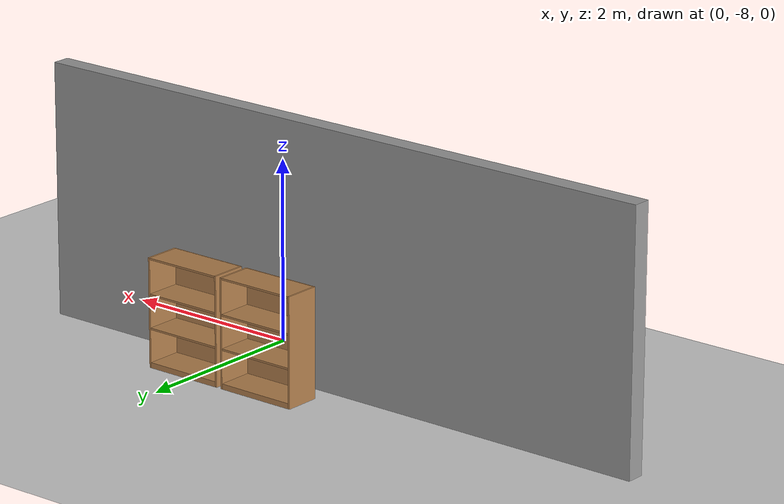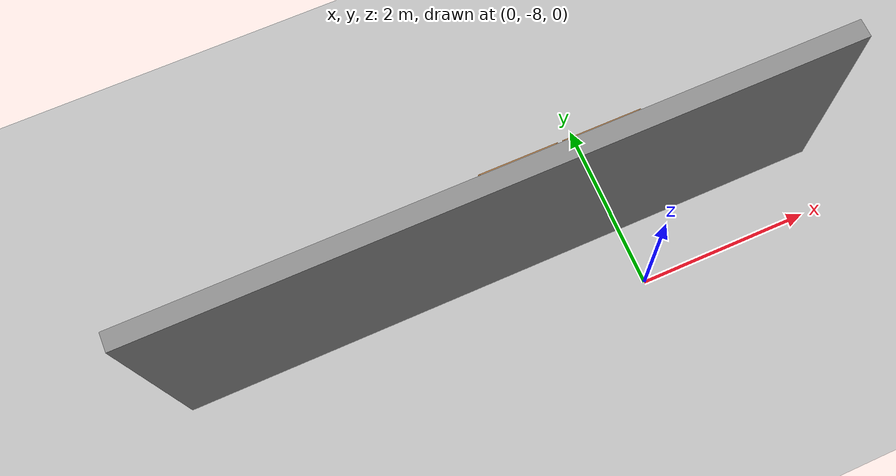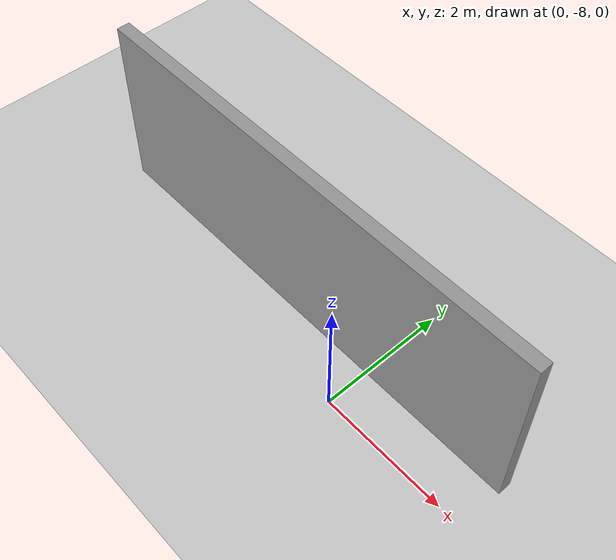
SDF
<sdf version="1.6">
 <world name="default">
  <model name="grey_wall_g">
   <link name="link">
    <pose>0 0 1.4 0 -0 0</pose>
    <inertial>
     <mass>1</mass>
     <inertia><ixx>1</ixx><ixy>0</ixy><ixz>0</ixz><iyy>1</iyy><iyz>0</iyz><izz>1</izz></inertia>
    </inertial>
    <visual name="visual">
     <cast_shadows>0</cast_shadows>
     <geometry><box><size>7.5 0.2 2.8</size></box></geometry>
     <material>
      <script>
       <uri>model://grey_wall/materials/scripts</uri>
       <uri>model://grey_wall/materials/textures</uri>
       <name>Gazebo/Grey</name>
      </script>
      <ambient>1 1 1 1</ambient>
      <diffuse>1 1 1 1</diffuse>
      <specular>0 0 0 1</specular>
      <emissive>0 0 0 1</emissive>
      <shader type="vertex"><normal_map>__default__</normal_map></shader>
     </material>
    </visual>
    <collision name="collision">
     <geometry><box><size>7.5 0.2 2.8</size></box></geometry>
     <surface>
      <friction>
       <ode><mu>1</mu><mu2>1</mu2><fdir1>0 0 0</fdir1><slip1>0</slip1><slip2>0</slip2></ode>
       <torsional>
        <coefficient>1</coefficient>
        <patch_radius>0</patch_radius>
        <surface_radius>0</surface_radius>
        <use_patch_radius>1</use_patch_radius>
        <ode><slip>0</slip></ode>
       </torsional>
      </friction>
      <bounce><restitution_coefficient>0</restitution_coefficient><threshold>1e+06</threshold></bounce>
      <contact>
       <collide_without_contact>0</collide_without_contact>
       <collide_without_contact_bitmask>1</collide_without_contact_bitmask>
       <collide_bitmask>1</collide_bitmask>
       <ode>
        <soft_cfm>0</soft_cfm>
        <soft_erp>0.2</soft_erp>
        <kp>1e+13</kp>
        <kd>1</kd>
        <max_vel>0.01</max_vel>
        <min_depth>0</min_depth>
       </ode>
       <bullet>
        <split_impulse>1</split_impulse>
        <split_impulse_penetration_threshold>-0.01</split_impulse_penetration_threshold>
        <soft_cfm>0</soft_cfm>
        <soft_erp>0.2</soft_erp>
        <kp>1e+13</kp>
        <kd>1</kd>
       </bullet>
      </contact>
     </surface>
    </collision>
   </link>
   <static>1</static>
   <pose>-1.36625 -7.21463 0 0 -0 0</pose>
  </model>
  <model name="ground_plane">
   <static>1</static>
   <link name="link">
    <collision name="collision">
     <geometry><plane><normal>0 0 1</normal><size>100 100</size></plane></geometry>
     <surface><friction><ode><mu>100</mu><mu2>50</mu2></ode></friction></surface>
    </collision>
    <visual name="visual">
     <cast_shadows>0</cast_shadows>
     <geometry><plane><normal>0 0 1</normal><size>100 100</size></plane></geometry>
     <material>
      <script><uri>file://media/materials/scripts/gazebo.material</uri><name>Gazebo/Grey</name></script>
     </material>
    </visual>
   </link>
   <pose>-3.46411 -11.1785 0 0 -0 0</pose>
  </model>
  <model name="bookshelf_0_clone">
   <link name="link">
    <pose>0 0 0 0 -0 3.14</pose>
    <inertial>
     <mass>1</mass>
     <inertia><ixx>1</ixx><ixy>0</ixy><ixz>0</ixz><iyy>1</iyy><iyz>0</iyz><izz>1</izz></inertia>
    </inertial>
    <visual name="visual1">
     <pose>0 0.005 0.6 0 -0 0</pose>
     <geometry><box><size>0.9 0.01 1.2</size></box></geometry>
     <material>
      <script><uri>file://media/materials/scripts/gazebo.material</uri><name>Gazebo/Wood</name></script>
      <ambient>1 1 1 1</ambient>
      <diffuse>1 1 1 1</diffuse>
      <specular>0.2 0.2 0.2 1</specular>
      <emissive>0 0 0 1</emissive>
      <shader type="vertex"><normal_map>__default__</normal_map></shader>
     </material>
    </visual>
    <visual name="visual2">
     <pose>0.45 -0.195 0.6 0 -0 0</pose>
     <geometry><box><size>0.02 0.4 1.2</size></box></geometry>
     <material>
      <script><uri>file://media/materials/scripts/gazebo.material</uri><name>Gazebo/Wood</name></script>
      <ambient>1 1 1 1</ambient>
      <diffuse>1 1 1 1</diffuse>
      <specular>0.2 0.2 0.2 1</specular>
      <emissive>0 0 0 1</emissive>
      <shader type="vertex"><normal_map>__default__</normal_map></shader>
     </material>
    </visual>
    <visual name="visual3">
     <pose>-0.45 -0.195 0.6 0 -0 0</pose>
     <geometry><box><size>0.02 0.4 1.2</size></box></geometry>
     <material>
      <script><uri>file://media/materials/scripts/gazebo.material</uri><name>Gazebo/Wood</name></script>
      <ambient>1 1 1 1</ambient>
      <diffuse>1 1 1 1</diffuse>
      <specular>0.2 0.2 0.2 1</specular>
      <emissive>0 0 0 1</emissive>
      <shader type="vertex"><normal_map>__default__</normal_map></shader>
     </material>
    </visual>
    <visual name="visual4">
     <pose>0 -0.195 0.03 0 -0 0</pose>
     <geometry><box><size>0.88 0.4 0.06</size></box></geometry>
     <material>
      <script><uri>file://media/materials/scripts/gazebo.material</uri><name>Gazebo/Wood</name></script>
      <ambient>1 1 1 1</ambient>
      <diffuse>1 1 1 1</diffuse>
      <specular>0.2 0.2 0.2 1</specular>
      <emissive>0 0 0 1</emissive>
      <shader type="vertex"><normal_map>__default__</normal_map></shader>
     </material>
    </visual>
    <visual name="visual5">
     <pose>0 -0.195 1.19 0 -0 0</pose>
     <geometry><box><size>0.88 0.4 0.02</size></box></geometry>
     <material>
      <script><uri>file://media/materials/scripts/gazebo.material</uri><name>Gazebo/Wood</name></script>
      <ambient>1 1 1 1</ambient>
      <diffuse>1 1 1 1</diffuse>
      <specular>0.2 0.2 0.2 1</specular>
      <emissive>0 0 0 1</emissive>
      <shader type="vertex"><normal_map>__default__</normal_map></shader>
     </material>
    </visual>
    <visual name="visual6">
     <pose>0 -0.195 0.43 0 -0 0</pose>
     <geometry><box><size>0.88 0.4 0.02</size></box></geometry>
     <material>
      <script><uri>file://media/materials/scripts/gazebo.material</uri><name>Gazebo/Wood</name></script>
      <ambient>1 1 1 1</ambient>
      <diffuse>1 1 1 1</diffuse>
      <specular>0.2 0.2 0.2 1</specular>
      <emissive>0 0 0 1</emissive>
      <shader type="vertex"><normal_map>__default__</normal_map></shader>
     </material>
    </visual>
    <visual name="visual7">
     <pose>0 -0.195 0.8 0 -0 0</pose>
     <geometry><box><size>0.88 0.4 0.02</size></box></geometry>
     <material>
      <script><uri>file://media/materials/scripts/gazebo.material</uri><name>Gazebo/Wood</name></script>
      <ambient>1 1 1 1</ambient>
      <diffuse>1 1 1 1</diffuse>
      <specular>0.2 0.2 0.2 1</specular>
      <emissive>0 0 0 1</emissive>
      <shader type="vertex"><normal_map>__default__</normal_map></shader>
     </material>
    </visual>
    <collision name="left_side">
     <pose>0.45 -0.195 0.6 0 -0 0</pose>
     <geometry><box><size>0.02 0.4 1.2</size></box></geometry>
     <surface>
      <friction>
       <ode><mu>1</mu><mu2>1</mu2><fdir1>0 0 0</fdir1><slip1>0</slip1><slip2>0</slip2></ode>
       <torsional>
        <coefficient>1</coefficient>
        <patch_radius>0</patch_radius>
        <surface_radius>0</surface_radius>
        <use_patch_radius>1</use_patch_radius>
        <ode><slip>0</slip></ode>
       </torsional>
      </friction>
      <bounce><restitution_coefficient>0</restitution_coefficient><threshold>1e+06</threshold></bounce>
      <contact>
       <collide_without_contact>0</collide_without_contact>
       <collide_without_contact_bitmask>1</collide_without_contact_bitmask>
       <collide_bitmask>1</collide_bitmask>
       <ode>
        <soft_cfm>0</soft_cfm>
        <soft_erp>0.2</soft_erp>
        <kp>1e+13</kp>
        <kd>1</kd>
        <max_vel>0.01</max_vel>
        <min_depth>0</min_depth>
       </ode>
       <bullet>
        <split_impulse>1</split_impulse>
        <split_impulse_penetration_threshold>-0.01</split_impulse_penetration_threshold>
        <soft_cfm>0</soft_cfm>
        <soft_erp>0.2</soft_erp>
        <kp>1e+13</kp>
        <kd>1</kd>
       </bullet>
      </contact>
     </surface>
    </collision>
    <collision name="back">
     <pose>0 0.005 0.6 0 -0 0</pose>
     <geometry><box><size>0.9 0.01 1.2</size></box></geometry>
     <surface>
      <friction>
       <ode><mu>1</mu><mu2>1</mu2><fdir1>0 0 0</fdir1><slip1>0</slip1><slip2>0</slip2></ode>
       <torsional>
        <coefficient>1</coefficient>
        <patch_radius>0</patch_radius>
        <surface_radius>0</surface_radius>
        <use_patch_radius>1</use_patch_radius>
        <ode><slip>0</slip></ode>
       </torsional>
      </friction>
      <bounce><restitution_coefficient>0</restitution_coefficient><threshold>1e+06</threshold></bounce>
      <contact>
       <collide_without_contact>0</collide_without_contact>
       <collide_without_contact_bitmask>1</collide_without_contact_bitmask>
       <collide_bitmask>1</collide_bitmask>
       <ode>
        <soft_cfm>0</soft_cfm>
        <soft_erp>0.2</soft_erp>
        <kp>1e+13</kp>
        <kd>1</kd>
        <max_vel>0.01</max_vel>
        <min_depth>0</min_depth>
       </ode>
       <bullet>
        <split_impulse>1</split_impulse>
        <split_impulse_penetration_threshold>-0.01</split_impulse_penetration_threshold>
        <soft_cfm>0</soft_cfm>
        <soft_erp>0.2</soft_erp>
        <kp>1e+13</kp>
        <kd>1</kd>
       </bullet>
      </contact>
     </surface>
    </collision>
    <collision name="low_shelf">
     <pose>0 -0.195 0.43 0 -0 0</pose>
     <geometry><box><size>0.88 0.4 0.02</size></box></geometry>
     <surface>
      <friction>
       <ode><mu>1</mu><mu2>1</mu2><fdir1>0 0 0</fdir1><slip1>0</slip1><slip2>0</slip2></ode>
       <torsional>
        <coefficient>1</coefficient>
        <patch_radius>0</patch_radius>
        <surface_radius>0</surface_radius>
        <use_patch_radius>1</use_patch_radius>
        <ode><slip>0</slip></ode>
       </torsional>
      </friction>
      <bounce><restitution_coefficient>0</restitution_coefficient><threshold>1e+06</threshold></bounce>
      <contact>
       <collide_without_contact>0</collide_without_contact>
       <collide_without_contact_bitmask>1</collide_without_contact_bitmask>
       <collide_bitmask>1</collide_bitmask>
       <ode>
        <soft_cfm>0</soft_cfm>
        <soft_erp>0.2</soft_erp>
        <kp>1e+13</kp>
        <kd>1</kd>
        <max_vel>0.01</max_vel>
        <min_depth>0</min_depth>
       </ode>
       <bullet>
        <split_impulse>1</split_impulse>
        <split_impulse_penetration_threshold>-0.01</split_impulse_penetration_threshold>
        <soft_cfm>0</soft_cfm>
        <soft_erp>0.2</soft_erp>
        <kp>1e+13</kp>
        <kd>1</kd>
       </bullet>
      </contact>
     </surface>
    </collision>
    <collision name="right_side">
     <pose>-0.45 -0.195 0.6 0 -0 0</pose>
     <geometry><box><size>0.02 0.4 1.2</size></box></geometry>
     <surface>
      <friction>
       <ode><mu>1</mu><mu2>1</mu2><fdir1>0 0 0</fdir1><slip1>0</slip1><slip2>0</slip2></ode>
       <torsional>
        <coefficient>1</coefficient>
        <patch_radius>0</patch_radius>
        <surface_radius>0</surface_radius>
        <use_patch_radius>1</use_patch_radius>
        <ode><slip>0</slip></ode>
       </torsional>
      </friction>
      <bounce><restitution_coefficient>0</restitution_coefficient><threshold>1e+06</threshold></bounce>
      <contact>
       <collide_without_contact>0</collide_without_contact>
       <collide_without_contact_bitmask>1</collide_without_contact_bitmask>
       <collide_bitmask>1</collide_bitmask>
       <ode>
        <soft_cfm>0</soft_cfm>
        <soft_erp>0.2</soft_erp>
        <kp>1e+13</kp>
        <kd>1</kd>
        <max_vel>0.01</max_vel>
        <min_depth>0</min_depth>
       </ode>
       <bullet>
        <split_impulse>1</split_impulse>
        <split_impulse_penetration_threshold>-0.01</split_impulse_penetration_threshold>
        <soft_cfm>0</soft_cfm>
        <soft_erp>0.2</soft_erp>
        <kp>1e+13</kp>
        <kd>1</kd>
       </bullet>
      </contact>
     </surface>
    </collision>
    <collision name="bottom">
     <pose>0 -0.195 0.03 0 -0 0</pose>
     <geometry><box><size>0.88 0.4 0.06</size></box></geometry>
     <surface>
      <friction>
       <ode><mu>1</mu><mu2>1</mu2><fdir1>0 0 0</fdir1><slip1>0</slip1><slip2>0</slip2></ode>
       <torsional>
        <coefficient>1</coefficient>
        <patch_radius>0</patch_radius>
        <surface_radius>0</surface_radius>
        <use_patch_radius>1</use_patch_radius>
        <ode><slip>0</slip></ode>
       </torsional>
      </friction>
      <bounce><restitution_coefficient>0</restitution_coefficient><threshold>1e+06</threshold></bounce>
      <contact>
       <collide_without_contact>0</collide_without_contact>
       <collide_without_contact_bitmask>1</collide_without_contact_bitmask>
       <collide_bitmask>1</collide_bitmask>
       <ode>
        <soft_cfm>0</soft_cfm>
        <soft_erp>0.2</soft_erp>
        <kp>1e+13</kp>
        <kd>1</kd>
        <max_vel>0.01</max_vel>
        <min_depth>0</min_depth>
       </ode>
       <bullet>
        <split_impulse>1</split_impulse>
        <split_impulse_penetration_threshold>-0.01</split_impulse_penetration_threshold>
        <soft_cfm>0</soft_cfm>
        <soft_erp>0.2</soft_erp>
        <kp>1e+13</kp>
        <kd>1</kd>
       </bullet>
      </contact>
     </surface>
    </collision>
    <collision name="top">
     <pose>0 -0.195 1.19 0 -0 0</pose>
     <geometry><box><size>0.88 0.4 0.02</size></box></geometry>
     <surface>
      <friction>
       <ode><mu>1</mu><mu2>1</mu2><fdir1>0 0 0</fdir1><slip1>0</slip1><slip2>0</slip2></ode>
       <torsional>
        <coefficient>1</coefficient>
        <patch_radius>0</patch_radius>
        <surface_radius>0</surface_radius>
        <use_patch_radius>1</use_patch_radius>
        <ode><slip>0</slip></ode>
       </torsional>
      </friction>
      <bounce><restitution_coefficient>0</restitution_coefficient><threshold>1e+06</threshold></bounce>
      <contact>
       <collide_without_contact>0</collide_without_contact>
       <collide_without_contact_bitmask>1</collide_without_contact_bitmask>
       <collide_bitmask>1</collide_bitmask>
       <ode>
        <soft_cfm>0</soft_cfm>
        <soft_erp>0.2</soft_erp>
        <kp>1e+13</kp>
        <kd>1</kd>
        <max_vel>0.01</max_vel>
        <min_depth>0</min_depth>
       </ode>
       <bullet>
        <split_impulse>1</split_impulse>
        <split_impulse_penetration_threshold>-0.01</split_impulse_penetration_threshold>
        <soft_cfm>0</soft_cfm>
        <soft_erp>0.2</soft_erp>
        <kp>1e+13</kp>
        <kd>1</kd>
       </bullet>
      </contact>
     </surface>
    </collision>
    <collision name="high_shelf">
     <pose>0 -0.195 0.8 0 -0 0</pose>
     <geometry><box><size>0.88 0.4 0.02</size></box></geometry>
     <surface>
      <friction>
       <ode><mu>1</mu><mu2>1</mu2><fdir1>0 0 0</fdir1><slip1>0</slip1><slip2>0</slip2></ode>
       <torsional>
        <coefficient>1</coefficient>
        <patch_radius>0</patch_radius>
        <surface_radius>0</surface_radius>
        <use_patch_radius>1</use_patch_radius>
        <ode><slip>0</slip></ode>
       </torsional>
      </friction>
      <bounce><restitution_coefficient>0</restitution_coefficient><threshold>1e+06</threshold></bounce>
      <contact>
       <collide_without_contact>0</collide_without_contact>
       <collide_without_contact_bitmask>1</collide_without_contact_bitmask>
       <collide_bitmask>1</collide_bitmask>
       <ode>
        <soft_cfm>0</soft_cfm>
        <soft_erp>0.2</soft_erp>
        <kp>1e+13</kp>
        <kd>1</kd>
        <max_vel>0.01</max_vel>
        <min_depth>0</min_depth>
       </ode>
       <bullet>
        <split_impulse>1</split_impulse>
        <split_impulse_penetration_threshold>-0.01</split_impulse_penetration_threshold>
        <soft_cfm>0</soft_cfm>
        <soft_erp>0.2</soft_erp>
        <kp>1e+13</kp>
        <kd>1</kd>
       </bullet>
      </contact>
     </surface>
    </collision>
   </link>
   <static>1</static>
   <pose>0.078978 -6.8979 0 0 -0 0</pose>
  </model>
  <model name="bookshelf_0_clone_0">
   <link name="link">
    <pose>0 0 0 0 -0 3.14</pose>
    <inertial>
     <mass>1</mass>
     <inertia><ixx>1</ixx><ixy>0</ixy><ixz>0</ixz><iyy>1</iyy><iyz>0</iyz><izz>1</izz></inertia>
    </inertial>
    <visual name="visual1">
     <pose>0 0.005 0.6 0 -0 0</pose>
     <geometry><box><size>0.9 0.01 1.2</size></box></geometry>
     <material>
      <script><uri>file://media/materials/scripts/gazebo.material</uri><name>Gazebo/Wood</name></script>
      <ambient>1 1 1 1</ambient>
      <diffuse>1 1 1 1</diffuse>
      <specular>0.2 0.2 0.2 1</specular>
      <emissive>0 0 0 1</emissive>
      <shader type="vertex"><normal_map>__default__</normal_map></shader>
     </material>
    </visual>
    <visual name="visual2">
     <pose>0.45 -0.195 0.6 0 -0 0</pose>
     <geometry><box><size>0.02 0.4 1.2</size></box></geometry>
     <material>
      <script><uri>file://media/materials/scripts/gazebo.material</uri><name>Gazebo/Wood</name></script>
      <ambient>1 1 1 1</ambient>
      <diffuse>1 1 1 1</diffuse>
      <specular>0.2 0.2 0.2 1</specular>
      <emissive>0 0 0 1</emissive>
      <shader type="vertex"><normal_map>__default__</normal_map></shader>
     </material>
    </visual>
    <visual name="visual3">
     <pose>-0.45 -0.195 0.6 0 -0 0</pose>
     <geometry><box><size>0.02 0.4 1.2</size></box></geometry>
     <material>
      <script><uri>file://media/materials/scripts/gazebo.material</uri><name>Gazebo/Wood</name></script>
      <ambient>1 1 1 1</ambient>
      <diffuse>1 1 1 1</diffuse>
      <specular>0.2 0.2 0.2 1</specular>
      <emissive>0 0 0 1</emissive>
      <shader type="vertex"><normal_map>__default__</normal_map></shader>
     </material>
    </visual>
    <visual name="visual4">
     <pose>0 -0.195 0.03 0 -0 0</pose>
     <geometry><box><size>0.88 0.4 0.06</size></box></geometry>
     <material>
      <script><uri>file://media/materials/scripts/gazebo.material</uri><name>Gazebo/Wood</name></script>
      <ambient>1 1 1 1</ambient>
      <diffuse>1 1 1 1</diffuse>
      <specular>0.2 0.2 0.2 1</specular>
      <emissive>0 0 0 1</emissive>
      <shader type="vertex"><normal_map>__default__</normal_map></shader>
     </material>
    </visual>
    <visual name="visual5">
     <pose>0 -0.195 1.19 0 -0 0</pose>
     <geometry><box><size>0.88 0.4 0.02</size></box></geometry>
     <material>
      <script><uri>file://media/materials/scripts/gazebo.material</uri><name>Gazebo/Wood</name></script>
      <ambient>1 1 1 1</ambient>
      <diffuse>1 1 1 1</diffuse>
      <specular>0.2 0.2 0.2 1</specular>
      <emissive>0 0 0 1</emissive>
      <shader type="vertex"><normal_map>__default__</normal_map></shader>
     </material>
    </visual>
    <visual name="visual6">
     <pose>0 -0.195 0.43 0 -0 0</pose>
     <geometry><box><size>0.88 0.4 0.02</size></box></geometry>
     <material>
      <script><uri>file://media/materials/scripts/gazebo.material</uri><name>Gazebo/Wood</name></script>
      <ambient>1 1 1 1</ambient>
      <diffuse>1 1 1 1</diffuse>
      <specular>0.2 0.2 0.2 1</specular>
      <emissive>0 0 0 1</emissive>
      <shader type="vertex"><normal_map>__default__</normal_map></shader>
     </material>
    </visual>
    <visual name="visual7">
     <pose>0 -0.195 0.8 0 -0 0</pose>
     <geometry><box><size>0.88 0.4 0.02</size></box></geometry>
     <material>
      <script><uri>file://media/materials/scripts/gazebo.material</uri><name>Gazebo/Wood</name></script>
      <ambient>1 1 1 1</ambient>
      <diffuse>1 1 1 1</diffuse>
      <specular>0.2 0.2 0.2 1</specular>
      <emissive>0 0 0 1</emissive>
      <shader type="vertex"><normal_map>__default__</normal_map></shader>
     </material>
    </visual>
    <collision name="left_side">
     <pose>0.45 -0.195 0.6 0 -0 0</pose>
     <geometry><box><size>0.02 0.4 1.2</size></box></geometry>
     <surface>
      <friction>
       <ode><mu>1</mu><mu2>1</mu2><fdir1>0 0 0</fdir1><slip1>0</slip1><slip2>0</slip2></ode>
       <torsional>
        <coefficient>1</coefficient>
        <patch_radius>0</patch_radius>
        <surface_radius>0</surface_radius>
        <use_patch_radius>1</use_patch_radius>
        <ode><slip>0</slip></ode>
       </torsional>
      </friction>
      <bounce><restitution_coefficient>0</restitution_coefficient><threshold>1e+06</threshold></bounce>
      <contact>
       <collide_without_contact>0</collide_without_contact>
       <collide_without_contact_bitmask>1</collide_without_contact_bitmask>
       <collide_bitmask>1</collide_bitmask>
       <ode>
        <soft_cfm>0</soft_cfm>
        <soft_erp>0.2</soft_erp>
        <kp>1e+13</kp>
        <kd>1</kd>
        <max_vel>0.01</max_vel>
        <min_depth>0</min_depth>
       </ode>
       <bullet>
        <split_impulse>1</split_impulse>
        <split_impulse_penetration_threshold>-0.01</split_impulse_penetration_threshold>
        <soft_cfm>0</soft_cfm>
        <soft_erp>0.2</soft_erp>
        <kp>1e+13</kp>
        <kd>1</kd>
       </bullet>
      </contact>
     </surface>
    </collision>
    <collision name="back">
     <pose>0 0.005 0.6 0 -0 0</pose>
     <geometry><box><size>0.9 0.01 1.2</size></box></geometry>
     <surface>
      <friction>
       <ode><mu>1</mu><mu2>1</mu2><fdir1>0 0 0</fdir1><slip1>0</slip1><slip2>0</slip2></ode>
       <torsional>
        <coefficient>1</coefficient>
        <patch_radius>0</patch_radius>
        <surface_radius>0</surface_radius>
        <use_patch_radius>1</use_patch_radius>
        <ode><slip>0</slip></ode>
       </torsional>
      </friction>
      <bounce><restitution_coefficient>0</restitution_coefficient><threshold>1e+06</threshold></bounce>
      <contact>
       <collide_without_contact>0</collide_without_contact>
       <collide_without_contact_bitmask>1</collide_without_contact_bitmask>
       <collide_bitmask>1</collide_bitmask>
       <ode>
        <soft_cfm>0</soft_cfm>
        <soft_erp>0.2</soft_erp>
        <kp>1e+13</kp>
        <kd>1</kd>
        <max_vel>0.01</max_vel>
        <min_depth>0</min_depth>
       </ode>
       <bullet>
        <split_impulse>1</split_impulse>
        <split_impulse_penetration_threshold>-0.01</split_impulse_penetration_threshold>
        <soft_cfm>0</soft_cfm>
        <soft_erp>0.2</soft_erp>
        <kp>1e+13</kp>
        <kd>1</kd>
       </bullet>
      </contact>
     </surface>
    </collision>
    <collision name="low_shelf">
     <pose>0 -0.195 0.43 0 -0 0</pose>
     <geometry><box><size>0.88 0.4 0.02</size></box></geometry>
     <surface>
      <friction>
       <ode><mu>1</mu><mu2>1</mu2><fdir1>0 0 0</fdir1><slip1>0</slip1><slip2>0</slip2></ode>
       <torsional>
        <coefficient>1</coefficient>
        <patch_radius>0</patch_radius>
        <surface_radius>0</surface_radius>
        <use_patch_radius>1</use_patch_radius>
        <ode><slip>0</slip></ode>
       </torsional>
      </friction>
      <bounce><restitution_coefficient>0</restitution_coefficient><threshold>1e+06</threshold></bounce>
      <contact>
       <collide_without_contact>0</collide_without_contact>
       <collide_without_contact_bitmask>1</collide_without_contact_bitmask>
       <collide_bitmask>1</collide_bitmask>
       <ode>
        <soft_cfm>0</soft_cfm>
        <soft_erp>0.2</soft_erp>
        <kp>1e+13</kp>
        <kd>1</kd>
        <max_vel>0.01</max_vel>
        <min_depth>0</min_depth>
       </ode>
       <bullet>
        <split_impulse>1</split_impulse>
        <split_impulse_penetration_threshold>-0.01</split_impulse_penetration_threshold>
        <soft_cfm>0</soft_cfm>
        <soft_erp>0.2</soft_erp>
        <kp>1e+13</kp>
        <kd>1</kd>
       </bullet>
      </contact>
     </surface>
    </collision>
    <collision name="right_side">
     <pose>-0.45 -0.195 0.6 0 -0 0</pose>
     <geometry><box><size>0.02 0.4 1.2</size></box></geometry>
     <surface>
      <friction>
       <ode><mu>1</mu><mu2>1</mu2><fdir1>0 0 0</fdir1><slip1>0</slip1><slip2>0</slip2></ode>
       <torsional>
        <coefficient>1</coefficient>
        <patch_radius>0</patch_radius>
        <surface_radius>0</surface_radius>
        <use_patch_radius>1</use_patch_radius>
        <ode><slip>0</slip></ode>
       </torsional>
      </friction>
      <bounce><restitution_coefficient>0</restitution_coefficient><threshold>1e+06</threshold></bounce>
      <contact>
       <collide_without_contact>0</collide_without_contact>
       <collide_without_contact_bitmask>1</collide_without_contact_bitmask>
       <collide_bitmask>1</collide_bitmask>
       <ode>
        <soft_cfm>0</soft_cfm>
        <soft_erp>0.2</soft_erp>
        <kp>1e+13</kp>
        <kd>1</kd>
        <max_vel>0.01</max_vel>
        <min_depth>0</min_depth>
       </ode>
       <bullet>
        <split_impulse>1</split_impulse>
        <split_impulse_penetration_threshold>-0.01</split_impulse_penetration_threshold>
        <soft_cfm>0</soft_cfm>
        <soft_erp>0.2</soft_erp>
        <kp>1e+13</kp>
        <kd>1</kd>
       </bullet>
      </contact>
     </surface>
    </collision>
    <collision name="bottom">
     <pose>0 -0.195 0.03 0 -0 0</pose>
     <geometry><box><size>0.88 0.4 0.06</size></box></geometry>
     <surface>
      <friction>
       <ode><mu>1</mu><mu2>1</mu2><fdir1>0 0 0</fdir1><slip1>0</slip1><slip2>0</slip2></ode>
       <torsional>
        <coefficient>1</coefficient>
        <patch_radius>0</patch_radius>
        <surface_radius>0</surface_radius>
        <use_patch_radius>1</use_patch_radius>
        <ode><slip>0</slip></ode>
       </torsional>
      </friction>
      <bounce><restitution_coefficient>0</restitution_coefficient><threshold>1e+06</threshold></bounce>
      <contact>
       <collide_without_contact>0</collide_without_contact>
       <collide_without_contact_bitmask>1</collide_without_contact_bitmask>
       <collide_bitmask>1</collide_bitmask>
       <ode>
        <soft_cfm>0</soft_cfm>
        <soft_erp>0.2</soft_erp>
        <kp>1e+13</kp>
        <kd>1</kd>
        <max_vel>0.01</max_vel>
        <min_depth>0</min_depth>
       </ode>
       <bullet>
        <split_impulse>1</split_impulse>
        <split_impulse_penetration_threshold>-0.01</split_impulse_penetration_threshold>
        <soft_cfm>0</soft_cfm>
        <soft_erp>0.2</soft_erp>
        <kp>1e+13</kp>
        <kd>1</kd>
       </bullet>
      </contact>
     </surface>
    </collision>
    <collision name="top">
     <pose>0 -0.195 1.19 0 -0 0</pose>
     <geometry><box><size>0.88 0.4 0.02</size></box></geometry>
     <surface>
      <friction>
       <ode><mu>1</mu><mu2>1</mu2><fdir1>0 0 0</fdir1><slip1>0</slip1><slip2>0</slip2></ode>
       <torsional>
        <coefficient>1</coefficient>
        <patch_radius>0</patch_radius>
        <surface_radius>0</surface_radius>
        <use_patch_radius>1</use_patch_radius>
        <ode><slip>0</slip></ode>
       </torsional>
      </friction>
      <bounce><restitution_coefficient>0</restitution_coefficient><threshold>1e+06</threshold></bounce>
      <contact>
       <collide_without_contact>0</collide_without_contact>
       <collide_without_contact_bitmask>1</collide_without_contact_bitmask>
       <collide_bitmask>1</collide_bitmask>
       <ode>
        <soft_cfm>0</soft_cfm>
        <soft_erp>0.2</soft_erp>
        <kp>1e+13</kp>
        <kd>1</kd>
        <max_vel>0.01</max_vel>
        <min_depth>0</min_depth>
       </ode>
       <bullet>
        <split_impulse>1</split_impulse>
        <split_impulse_penetration_threshold>-0.01</split_impulse_penetration_threshold>
        <soft_cfm>0</soft_cfm>
        <soft_erp>0.2</soft_erp>
        <kp>1e+13</kp>
        <kd>1</kd>
       </bullet>
      </contact>
     </surface>
    </collision>
    <collision name="high_shelf">
     <pose>0 -0.195 0.8 0 -0 0</pose>
     <geometry><box><size>0.88 0.4 0.02</size></box></geometry>
     <surface>
      <friction>
       <ode><mu>1</mu><mu2>1</mu2><fdir1>0 0 0</fdir1><slip1>0</slip1><slip2>0</slip2></ode>
       <torsional>
        <coefficient>1</coefficient>
        <patch_radius>0</patch_radius>
        <surface_radius>0</surface_radius>
        <use_patch_radius>1</use_patch_radius>
        <ode><slip>0</slip></ode>
       </torsional>
      </friction>
      <bounce><restitution_coefficient>0</restitution_coefficient><threshold>1e+06</threshold></bounce>
      <contact>
       <collide_without_contact>0</collide_without_contact>
       <collide_without_contact_bitmask>1</collide_without_contact_bitmask>
       <collide_bitmask>1</collide_bitmask>
       <ode>
        <soft_cfm>0</soft_cfm>
        <soft_erp>0.2</soft_erp>
        <kp>1e+13</kp>
        <kd>1</kd>
        <max_vel>0.01</max_vel>
        <min_depth>0</min_depth>
       </ode>
       <bullet>
        <split_impulse>1</split_impulse>
        <split_impulse_penetration_threshold>-0.01</split_impulse_penetration_threshold>
        <soft_cfm>0</soft_cfm>
        <soft_erp>0.2</soft_erp>
        <kp>1e+13</kp>
        <kd>1</kd>
       </bullet>
      </contact>
     </surface>
    </collision>
   </link>
   <static>1</static>
   <pose>-0.895511 -6.89556 0 0 -0 0</pose>
  </model>
 </world>
</sdf>
